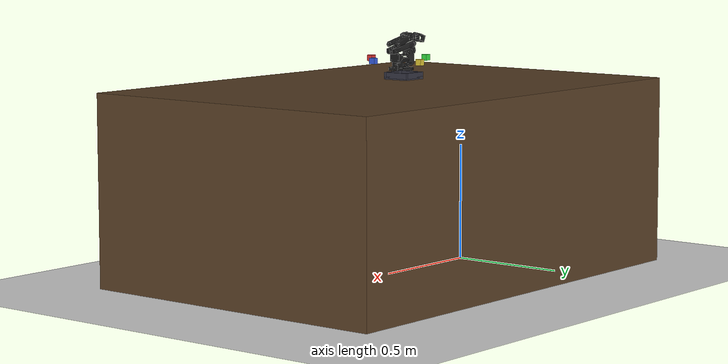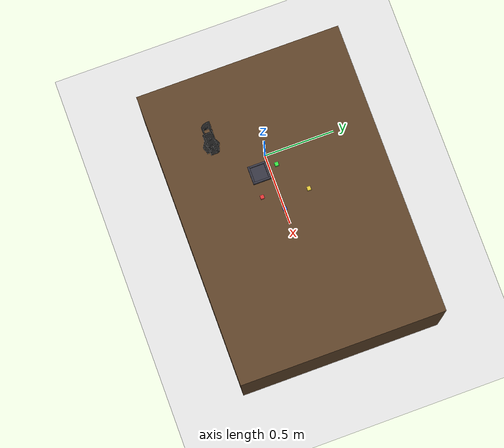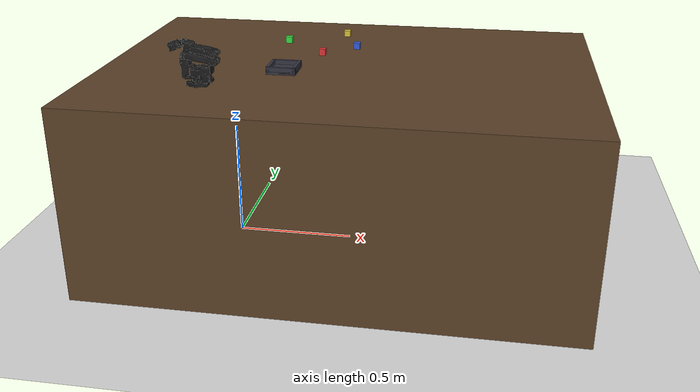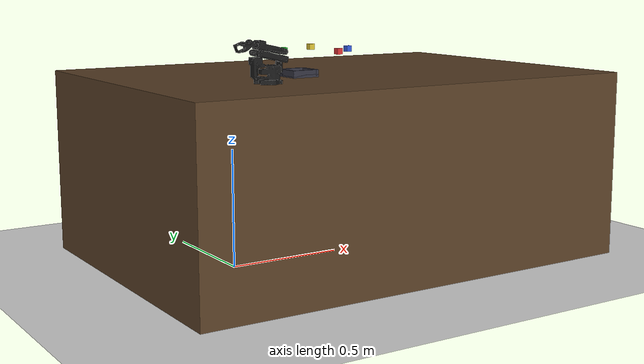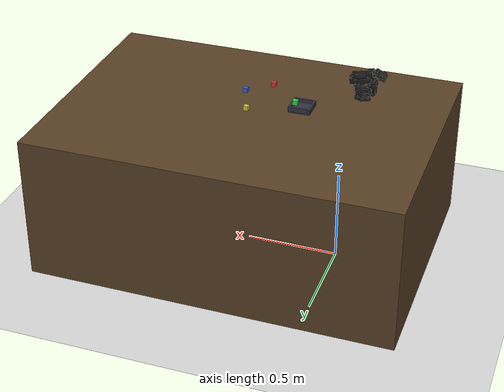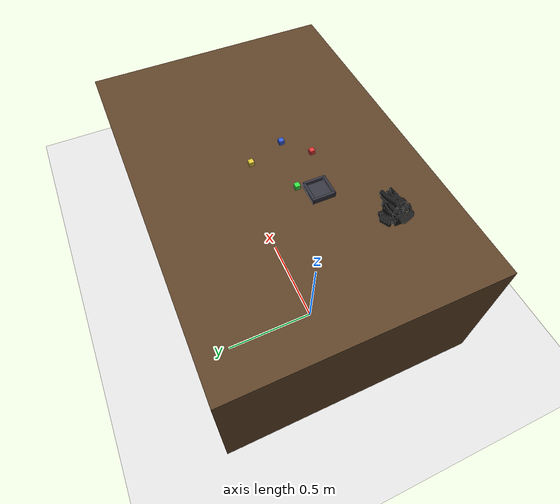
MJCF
<mujoco model="Scanned Objects SO100">
    <size memory="500M"/>

    <option integrator="RK4" noslip_iterations="20" />

    <default>
        <joint armature="0.1" damping="0.1" />
        <default class="visual_only">
            <geom type="mesh" contype="0" conaffinity="0" group="2" />
        </default>
        <default class="no_visual_collision">
            <geom type="capsule" solimp=".9 .99 .001" solref=".015 1" group="3" />
        </default>
        <default class="visual_collision">
            <geom type="mesh" solimp=".9 .99 .001" solref=".015 1" group="2" />
        </default>
    </default>

    <include file="./tabletop/object/floor_isaac_style.xml" />
    <include file="./tabletop/object/object_table.xml" />
    <include file="./tabletop/object/obj_blocks.xml"/>
    <include file="./tabletop/object/obj_bin.xml"/>

    <include file="./so_arm100/SO100/so100.xml" />
</mujoco>

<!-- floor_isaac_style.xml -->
<mujoco model="floor and sky">

    <visual>
        <headlight diffuse="0.6 0.6 0.6" ambient="0.3 0.3 0.3" specular="0 0 0" />
        <rgba haze="0.15 0.25 0.35 1" />
    </visual>

    <asset>
        <!-- Sky -->
        <texture type="skybox" builtin="gradient" rgb1="0.3 0.5 0.7" rgb2="0 0 0" width="512" height="3072" />
        <!-- Ground -->
        <texture type="2d" name="groundplane" builtin="checker" mark="edge" rgb1="0.9 0.9 0.9" rgb2="0.8 0.8 0.8" markrgb="0.8 0.8 0.8" width="1000" height="1000" />
        <material name="groundplane" texture="groundplane" texuniform="true" texrepeat="1 1" reflectance="0.1" />
    </asset>

    <worldbody>
        <light pos="1 -1 1.5" dir="-1 1 -1" diffuse="0.5 0.5 0.5" directional="true" />
        <geom name="floor" group="1" size="0 0 0.05" type="plane" material="groundplane" />
    </worldbody>

</mujoco>

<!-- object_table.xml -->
<mujocoinclude>

    <asset>
        <texture type="2d" name="light_wood" file="../mesh/light_wood_v3.png" />
        <material name="wood_table_mat" texture="light_wood" specular="0.5" shininess="0.5"
            rgba="0.5 0.5 0.5 1" />
    </asset>

    <worldbody>
        <body name="front_object_table" pos="0 0 0" euler="0 0 0">
            <geom name="front_object_table" size="1.0 0.7 0.4" pos="0.5 0 0.4" type="box"
                material="wood_table_mat" contype="1" conaffinity="1" condim="4"
                friction="1.0 0.02 0.002" solref="0.01 1" solimp="0.9 0.97 0.01"
                margin="0" gap="0" />
            <inertial pos="0 0 0" mass="1" diaginertia="0 0 0" />

           <body name="camera" pos="0.300 0.000 1.305">
                <camera name="topview" pos="0 0 0" xyaxes="0 1 0 -1 0 0" fovy="70" />
            </body>

            <body name="camera2" pos="0.5 0.0 1.8">
                <camera name="overheadview_legacy" pos="0 0 0" xyaxes="0 -1 0 1 0 0" fovy="90" />
            </body>

            <body name="camera3" pos="0.6 0.0 0.95">
                <camera name="sideview" pos="0 0 0" xyaxes="0 1 0 0 0 1" fovy="70" />
            </body>

        </body>

    </worldbody>

</mujocoinclude>

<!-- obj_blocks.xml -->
<mujoco model="obj_blocks">

    <worldbody>
        <!-- Blocks: 2.5cm cubed (25mm x 25mm x 25mm).
             friction 1.5 and stiffer solref improve gripper grasp (less slip).
             condim=4: full friction cone with torsion. -->
        <body name="body_obj_block_1" pos="0.42 -0.16 0.90" euler="0 0 0">
            <joint type="free" damping="0.1" armature="0.001" />
            <geom type="box" size="0.0125 0.0125 0.0125" rgba="0.85 0.2 0.2 1" contype="1" conaffinity="1" condim="4" friction="1.5 0.01 0.002" solref="0.01 1" solimp="0.92 0.97 0.001" margin="0.0005" gap="0" />
            <inertial pos="0 0 0" mass="0.03" diaginertia="0.0000031 0.0000031 0.0000031" />
        </body>

        <body name="body_obj_block_2" pos="0.54 -0.05 0.90" euler="0 0 0">
            <joint type="free" damping="0.1" armature="0.001" />
            <geom type="box" size="0.0125 0.0125 0.0125" rgba="0.2 0.35 0.85 1" contype="1" conaffinity="1" condim="4" friction="1.5 0.01 0.002" solref="0.01 1" solimp="0.92 0.97 0.001" margin="0.0005" gap="0" />
            <inertial pos="0 0 0" mass="0.025" diaginertia="0.0000026 0.0000026 0.0000026" />
        </body>

        <body name="body_obj_block_3" pos="0.25 0.0 0.90" euler="0 0 0">
            <joint type="free" damping="0.1" armature="0.001" />
            <geom type="box" size="0.0125 0.0125 0.0125" rgba="0.2 0.85 0.25 1" contype="1" conaffinity="1" condim="4" friction="1.5 0.01 0.002" solref="0.01 1" solimp="0.92 0.97 0.001" margin="0.0005" gap="0" />
            <inertial pos="0 0 0" mass="0.025" diaginertia="0.0000026 0.0000026 0.0000026" />
        </body>

        <body name="body_obj_block_4" pos="0.47 0.14 0.90" euler="0 0 0">
            <joint type="free" damping="0.1" armature="0.001" />
            <geom type="box" size="0.0125 0.0125 0.0125" rgba="0.85 0.75 0.2 1" contype="1" conaffinity="1" condim="4" friction="1.5 0.01 0.002" solref="0.01 1" solimp="0.92 0.97 0.001" margin="0.0005" gap="0" />
            <inertial pos="0 0 0" mass="0.018" diaginertia="0.0000019 0.0000019 0.0000019" />
        </body>

    </worldbody>
</mujoco>

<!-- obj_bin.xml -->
<mujocoinclude>

    <worldbody>
      <body name="body_obj_bin" pos="0.25 -0.12 0.80">
            <!-- No free joint: bin is fixed in place every episode. -->

            <geom type="box" size="0.06 0.06 0.006" pos="0 0 0.006" rgba="0.2 0.2 0.25 1"
                  contype="1" conaffinity="1" condim="4" friction="1.0 0.02 0.002"
                  solref="0.01 1" solimp="0.9 0.97 0.01" margin="0" gap="0" />
            <geom type="box" size="0.006 0.06 0.0125" pos="0.054 0 0.018" rgba="0.2 0.2 0.25 1"
                  contype="1" conaffinity="1" condim="4" friction="1.0 0.02 0.002"
                  solref="0.01 1" solimp="0.9 0.97 0.01" margin="0" gap="0" />
            <geom type="box" size="0.006 0.06 0.0125" pos="-0.054 0 0.018" rgba="0.2 0.2 0.25 1"
                  contype="1" conaffinity="1" condim="4" friction="1.0 0.02 0.002"
                  solref="0.01 1" solimp="0.9 0.97 0.01" margin="0" gap="0" />
            <geom type="box" size="0.06 0.006 0.0125" pos="0 0.054 0.018" rgba="0.2 0.2 0.25 1"
                  contype="1" conaffinity="1" condim="4" friction="1.0 0.02 0.002"
                  solref="0.01 1" solimp="0.9 0.97 0.01" margin="0" gap="0" />
            <geom type="box" size="0.06 0.006 0.0125" pos="0 -0.054 0.018" rgba="0.2 0.2 0.25 1"
                  contype="1" conaffinity="1" condim="4" friction="1.0 0.02 0.002"
                  solref="0.01 1" solimp="0.9 0.97 0.01" margin="0" gap="0" />

            <inertial pos="0 0 0.03" mass="0.5" diaginertia="0.002 0.002 0.002" />
        </body>
    </worldbody>

</mujocoinclude>

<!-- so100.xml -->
<mujoco model="so_arm100">
  <compiler angle="radian"/>
  <default>
    <default class="so100_servo">
      <joint damping="0.60" frictionloss="0.052" armature="0.028"/>
      <position kp="300" kv="2.0" forcerange="-3.35 3.35"/>
    </default>
  </default>
  <asset>
    <mesh name="Base" file="assets/Base.stl"/>
    <mesh name="Rotation_Pitch" file="assets/Rotation_Pitch.stl"/>
    <mesh name="Upper_Arm" file="assets/Upper_Arm.stl"/>
    <mesh name="Lower_Arm" file="assets/Lower_Arm.stl"/>
    <mesh name="Wrist_Pitch_Roll" file="assets/Wrist_Pitch_Roll.stl"/>
  </asset>
  <worldbody>
    <body name="base" pos="0.00 -0.35 0.805" quat="0.707107 0 0 -0.707107">
      <geom type="mesh" rgba="0.1 0.1 0.1 1" mesh="Base"/>
      <body name="shoulder" pos="0 -0.0452 0.0165" quat="0.707109 0.707105 0 0">
      <inertial pos="-9.07886e-05 0.0590972 0.031089" mass="0.119226" diaginertia="5.94278e-05 5.89975e-05 3.13712e-05"/>
      <joint name="shoulder_pan" pos="0 0 0" axis="0 1 0" range="-2 2" actuatorfrcrange="-35 35"/>
      <geom type="mesh" rgba="0.1 0.1 0.1 1" mesh="Rotation_Pitch"/>
      <body name="upper_arm" pos="0 0.1025 0.0306" quat="0.62161 -0.783327 0 0">
        <inertial pos="-1.72052e-05 0.0701802 0.00310545" mass="0.162409" diaginertia="0.000213312 0.000167164 7.01522e-05"/>
        <joint name="shoulder_lift" pos="0 0 0" axis="1 0 0" range="0 3.5" actuatorfrcrange="-35 35"/>
        <geom type="mesh" rgba="0.1 0.1 0.1 1" mesh="Upper_Arm"/>
        <body name="lower_arm" pos="0 0.11257 0.028" quat="0.707109 0.707105 0 0">
          <inertial pos="-0.00339604 0.00137796 0.0768007" mass="0.147968" diaginertia="0.000138803 0.000107748 4.84242e-05"/>
          <joint name="elbow_flex" pos="0 0 0" axis="1 0 0" range="-3.14158 0" actuatorfrcrange="-35 35"/>
          <geom type="mesh" rgba="0.1 0.1 0.1 1" mesh="Lower_Arm"/>
          <body name="wrist" pos="0 0.0052 0.1349" quat="0.877583 -0.479426 0 0">
            <inertial pos="-0.00852653 -0.0352279 -2.34622e-05" mass="0.0661321" diaginertia="3.45403e-05 2.39041e-05 1.94704e-05"/>
            <joint name="wrist_flex" pos="0 0 0" axis="1 0 0" range="-2.5 1.2" actuatorfrcrange="-35 35"/>
            <geom type="mesh" rgba="0.1 0.1 0.1 1" mesh="Wrist_Pitch_Roll"/>
            <body name="gripper" pos="0 -0.0601 0" quat="0.707109 0 0.707105 0">
              <inertial pos="0.00552377 -0.0280167 0.000483583" mass="0.0929859" diaginertia="5.03136e-05 4.64098e-05 2.72961e-05"/>
              <joint name="wrist_roll" pos="0 0 0" axis="0 1 0" range="-3.14158 3.14158" actuatorfrcrange="-35 35"/>
              <body name="camera_center" pos="0.0 -0.03 0.08">
                <camera name="egocentric" pos="0 0 0" xyaxes="-1 0 0 0 0 1" fovy="90"/>
              </body>
              <body name="jaw" pos="-0.0202 -0.0244 0" quat="6.32679e-06 0 1 0">
                <inertial pos="-0.00161745 -0.0303473 0.000449646" mass="0.0202444" diaginertia="1.11265e-05 8.99651e-06 2.99548e-06"/>
                <joint name="gripper" pos="0 0 0" axis="0 0 1" range="-0.2 2" actuatorfrcrange="-35 35"/>
              </body>
            </body>
          </body>
        </body>
      </body>
      </body>
    </body>
  </worldbody>
  <actuator>
    <position class="so100_servo" name="shoulder_pan" joint="shoulder_pan" ctrlrange="-2 2"/>
    <position class="so100_servo" name="shoulder_lift" joint="shoulder_lift" ctrlrange="0 3.5"/>
    <position class="so100_servo" name="elbow_flex" joint="elbow_flex" ctrlrange="-3.14158 0"/>
    <position class="so100_servo" name="wrist_flex" joint="wrist_flex" ctrlrange="-2.5 1.2"/>
    <position class="so100_servo" name="wrist_roll" joint="wrist_roll" ctrlrange="-3.14158 3.14158"/>
    <position class="so100_servo" name="gripper" joint="gripper" ctrlrange="-0.2 2"/>
  </actuator>
</mujoco>
